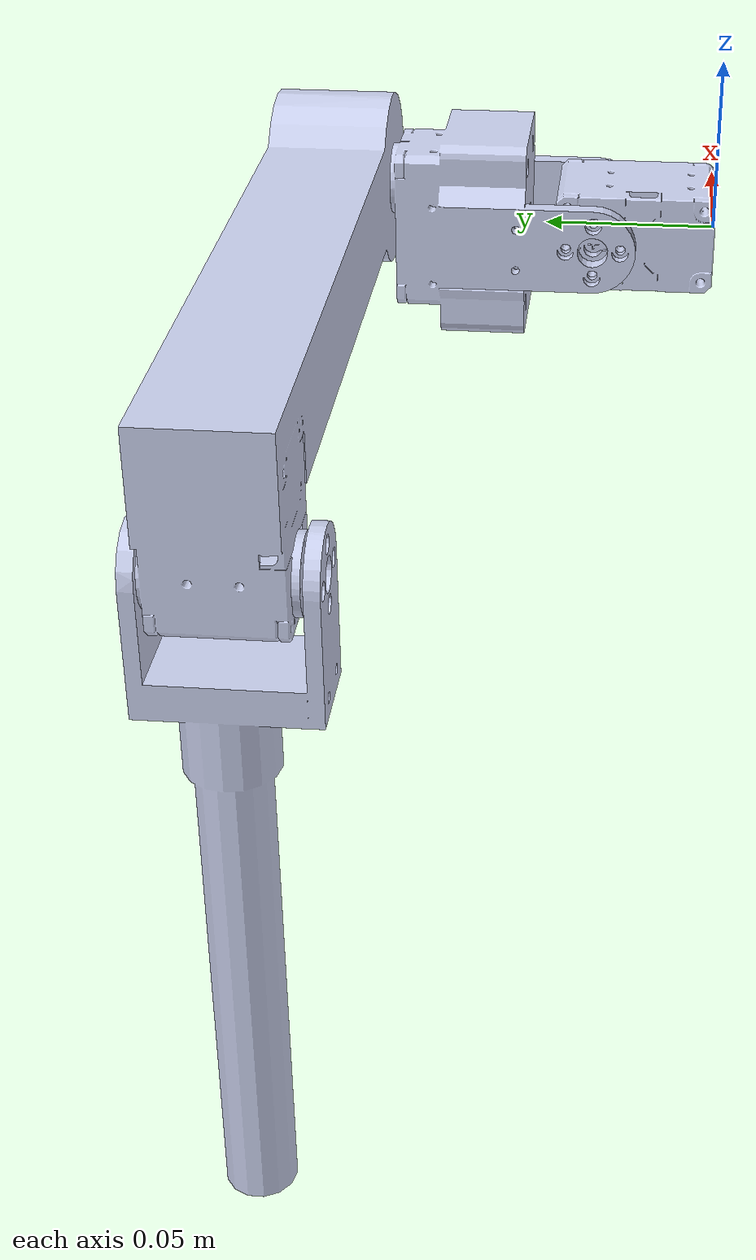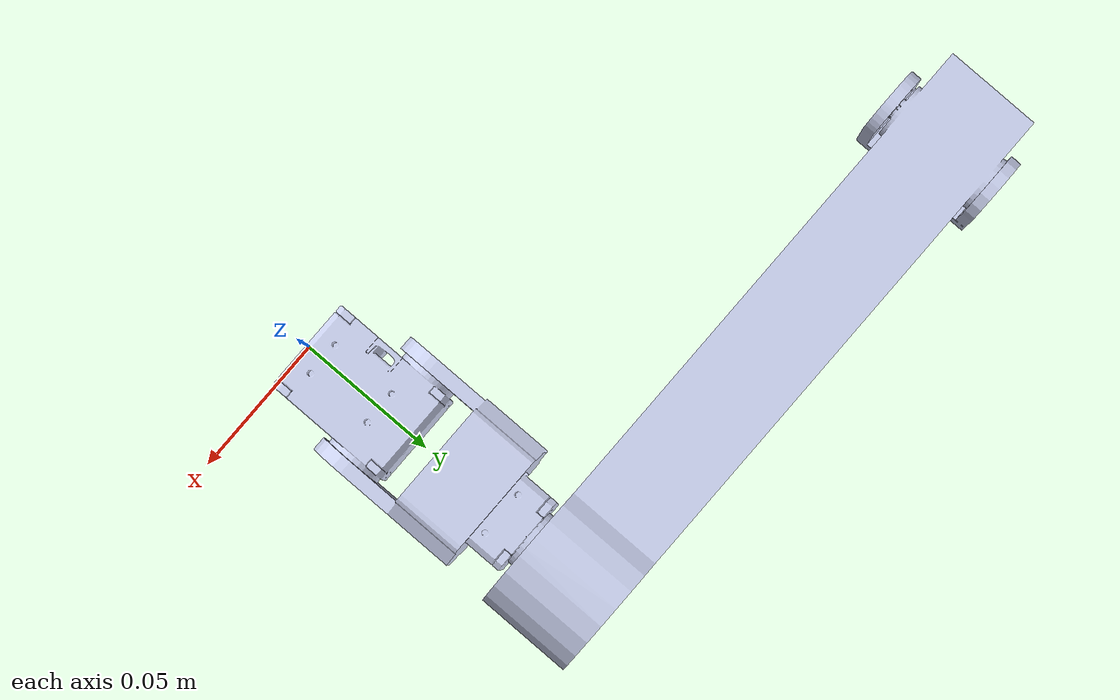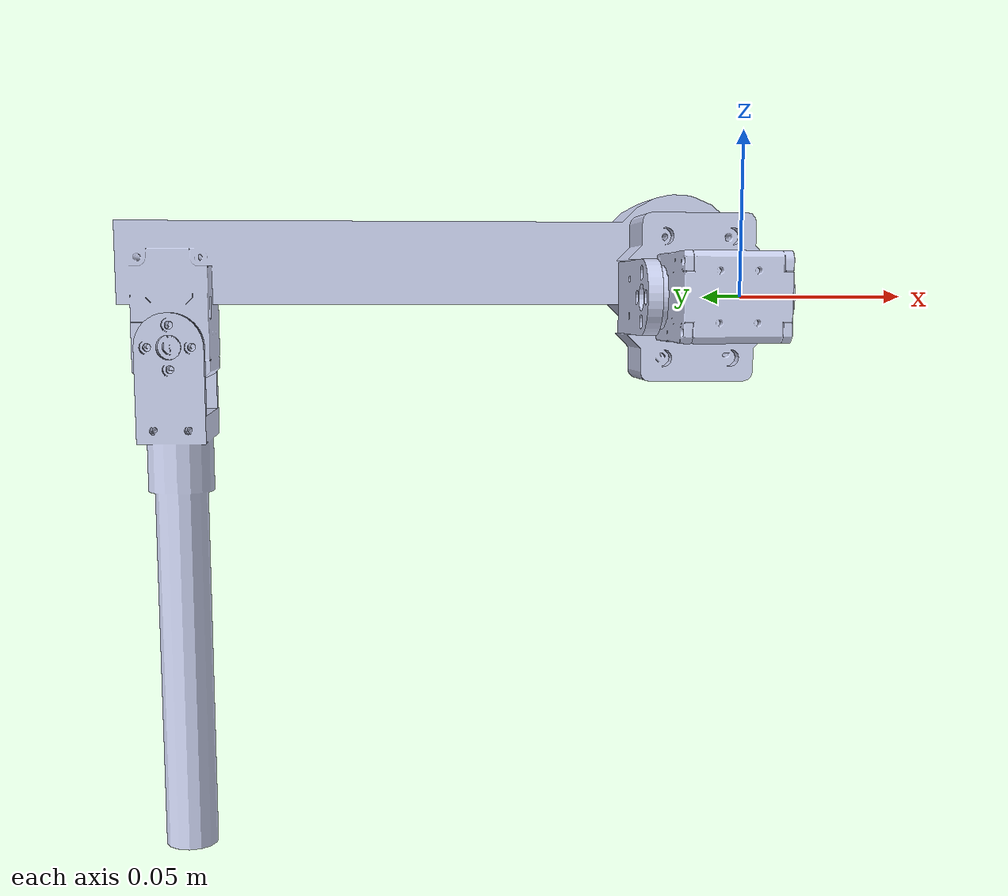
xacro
<?xml version="1.0"?>
<robot name="leg1_project" xmlns:xacro="http://ros.org/wiki/xacro">

  <!-- Import Rviz colors -->

  <!-- Import all Gazebo-customization elements, including Gazebo colors -->
  <xacro:include filename="$(find leg1_project_description)/urdf/leg1_project.gazebo.xacro" />

  <!-- Import Transmission -->
  <xacro:include filename="$(find leg1_project_description)/urdf/leg1_project.transmission.xacro" />

  <!-- Import URDF -->
  <xacro:include filename="$(find leg1_project_description)/urdf/leg1_project.urdf.xacro" />

</robot>

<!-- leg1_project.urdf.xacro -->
<robot name="leg1_project" xmlns:xacro="http://ros.org/wiki/xacro">

  <!-- Fix the base_link -->
  <link name="world"/>

  <joint name="fixed" type="fixed">
    <parent link="world"/>
    <child link="base_link"/>
     <origin xyz="0.0 0.0 0.0" rpy="0 0 0" />
  </joint>

<link name="base_link">
    <inertial>
      <origin
        xyz="0.00051804 0.023581 -1.107E-05"
        rpy="0 0 0" />
      <mass
        value="0.043417" />
      <inertia
        ixx="9.9656E-06"
        ixy="-2.555E-07"
        ixz="-5.2331E-09"
        iyy="6.3804E-06"
        iyz="-4.4082E-09"
        izz="1.1002E-05" />
    </inertial>
    <visual>
      <origin
        xyz="0 0 0"
        rpy="0 0 0" />
      <geometry>
        <mesh
          filename="package://leg1_project_description/meshes/base_link.STL" />
      </geometry>
      <material
        name="">
        <color
          rgba="0.79216 0.81961 0.93333 1" />
      </material>
    </visual>
    <collision>
      <origin
        xyz="0 0 0"
        rpy="0 0 0" />
      <geometry>
        <mesh
          filename="package://leg1_project_description/meshes/base_link.STL" />
      </geometry>
    </collision>
  </link>
  <link
    name="link1">
    <inertial>
      <origin
        xyz="-0.00037102 0.035109 0.0004294"
        rpy="0 0 0" />
      <mass
        value="0.083098" />
      <inertia
        ixx="2.7192E-05"
        ixy="1.2278E-06"
        ixz="-1.4412E-08"
        iyy="2.864E-05"
        iyz="-2.5391E-07"
        izz="1.9508E-05" />
    </inertial>
    <visual>
      <origin
        xyz="0 0 0"
        rpy="0 0 0" />
      <geometry>
        <mesh
          filename="package://leg1_project_description/meshes/link1.STL" />
      </geometry>
      <material
        name="">
        <color
          rgba="0.79216 0.81961 0.93333 1" />
      </material>
    </visual>
    <collision>
      <origin
        xyz="0 0 0"
        rpy="0 0 0" />
      <geometry>
        <mesh
          filename="package://leg1_project_description/meshes/link1.STL" />
      </geometry>
    </collision>
  </link>
  <joint
    name="joint1"
    type="revolute">
    <origin
      xyz="0 0.03525 0"
      rpy="0 0 0" />
    <parent
      link="base_link" />
    <child
      link="link1" />
    <axis
      xyz="1 0 0" />
    <limit
      lower="-1.57"
      upper="1.57"
      effort="1"
      velocity="4.8" />
    <!--dynamics damping ="0.7"/-->
  </joint>
  <link
    name="link2">
    <inertial>
      <origin
        xyz="-0.00096247 0.098146 -0.0027245"
        rpy="0 0 0" />
      <mass
        value="0.25913" />
      <inertia
        ixx="0.00086628"
        ixy="-1.0337E-06"
        ixz="2.4954E-07"
        iyy="5.4494E-05"
        iyz="-1.0491E-05"
        izz="0.00086108" />
    </inertial>
    <visual>
      <origin
        xyz="0 0 0"
        rpy="0 0 0" />
      <geometry>
        <mesh
          filename="package://leg1_project_description/meshes/link2.STL" />
      </geometry>
      <material
        name="">
        <color
          rgba="0.79216 0.81961 0.93333 1" />
      </material>
    </visual>
    <collision>
      <origin
        xyz="0 0 0"
        rpy="0 0 0" />
      <geometry>
        <mesh
          filename="package://leg1_project_description/meshes/link2.STL" />
      </geometry>
    </collision>
  </link>
  <joint
    name="joint2"
    type="revolute">
    <origin
      xyz="0 0.079 0.0125"
      rpy="0 0 1.5708" />
    <parent
      link="link1" />
    <child
      link="link2" />
    <axis
      xyz="-1 0 0" />
    <limit
      lower="-3.14"
      upper="3.14"
      effort="1"
      velocity="4.8" />
    <!--dynamics damping ="0.7"/-->
  </joint>
  <link
    name="link3">
    <inertial>
      <origin
        xyz="-0.01958 0.088874 -3.9419E-05"
        rpy="0 0 0" />
      <mass
        value="0.071285" />
      <inertia
        ixx="0.00020648"
        ixy="4.9665E-06"
        ixz="-2.2416E-09"
        iyy="6.6111E-06"
        iyz="1.0204E-08"
        izz="0.00020827" />
    </inertial>
    <visual>
      <origin
        xyz="0 0 0"
        rpy="0 0 0" />
      <geometry>
        <mesh
          filename="package://leg1_project_description/meshes/link3.STL" />
      </geometry>
      <material
        name="">
        <color
          rgba="0.79216 0.81961 0.93333 1" />
      </material>
    </visual>
    <collision>
      <origin
        xyz="0 0 0"
        rpy="0 0 0" />
      <geometry>
        <mesh
          filename="package://leg1_project_description/meshes/link3.STL" />
      </geometry>
    </collision>
  </link>
  <joint
    name="joint3"
    type="revolute">
    <origin
      xyz="0.0196 0.18555 -0.03025"
      rpy="-1.5708 0 0" />
    <parent
      link="link2" />
    <child
      link="link3" />
    <axis
      xyz="1 0 -0.0012766" />
    <limit
      lower="-3.14"
      upper="3.14"
      effort="1"
      velocity="4.8" />
    <!--dynamics damping ="0.7"/-->
  </joint>
</robot>
